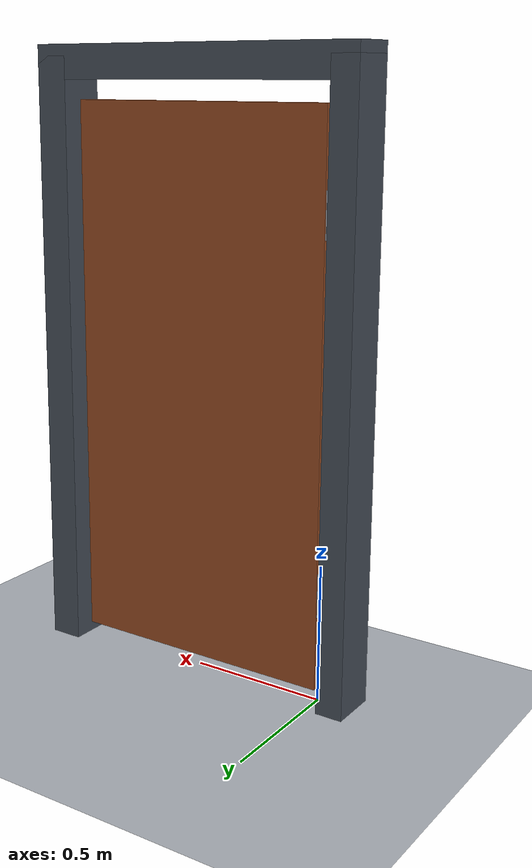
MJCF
<mujoco model="self_closing_door">
  <compiler angle="radian"/>
  <option timestep="0.002" integrator="implicitfast" gravity="0 0 -9.81"/>

  <visual>
    <headlight ambient="0.4 0.4 0.4" diffuse="0.7 0.7 0.7" specular="0.2 0.2 0.2"/>
  </visual>

  <worldbody>
    <light name="overhead" pos="1 -2 4" dir="0 0 -1"/>
    <camera name="overview" pos="3 -4 3" xyaxes="0.8 0.6 0 -0.3 0.4 0.866"/>

    <geom name="floor" type="plane" pos="0 0 0" size="4 4 0.1" rgba="0.72 0.74 0.77 1"/>

    <body name="frame">
      <geom name="hinge_post" type="box" pos="-0.09 0 1.1" size="0.05 0.09 1.1" rgba="0.25 0.28 0.32 1"/>
      <geom name="latch_post" type="box" pos="1.08 0 1.1" size="0.06 0.09 1.1" rgba="0.25 0.28 0.32 1"/>
      <geom name="lintel" type="box" pos="0.5 0 2.18" size="0.64 0.09 0.06" rgba="0.25 0.28 0.32 1"/>
      <geom name="lower_hinge_barrel" type="cylinder" pos="0 0 0.4" size="0.024 0.08" contype="0" conaffinity="0" rgba="0.65 0.67 0.7 1"/>
      <geom name="upper_hinge_barrel" type="cylinder" pos="0 0 1.7" size="0.024 0.08" contype="0" conaffinity="0" rgba="0.65 0.67 0.7 1"/>
    </body>

    <body name="door" pos="0 0 1.05">
      <inertial pos="0.5 0 0" mass="10" diaginertia="3.336333 4.166667 0.836333"/>
      <joint name="hinge" type="hinge" pos="0 0 0" axis="0 0 1" limited="true" range="0 1.745329" stiffness="36" springref="0" damping="22"/>
      <geom name="door_panel" type="box" pos="0.5 0 0" size="0.5 0.03 1" rgba="0.55 0.27 0.12 1"/>
      <geom name="knob_stem" type="capsule" fromto="0.88 -0.03 0.05 0.88 -0.10 0.05" size="0.018" contype="0" conaffinity="0" rgba="0.75 0.76 0.78 1"/>
      <geom name="door_knob" type="sphere" pos="0.88 -0.11 0.05" size="0.04" contype="0" conaffinity="0" rgba="0.75 0.76 0.78 1"/>
    </body>
  </worldbody>

  <keyframe>
    <key name="start" qpos="1.308997" qvel="0"/>
  </keyframe>
</mujoco>
